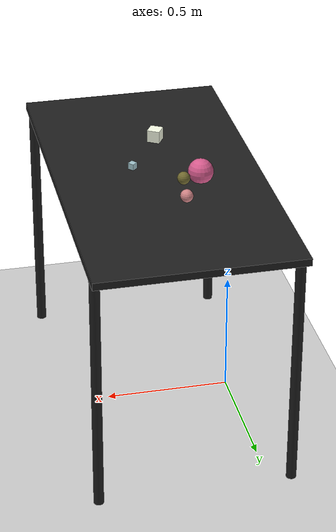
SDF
<?xml version="1.0" ?>
<sdf version="1.6">
  <world name="arm_world">
    <plugin filename="gz-sim-physics-system" name="gz::sim::systems::Physics">
      <engine>
        <filename>libgz-physics-bullet-featherstone-plugin.so</filename>
      </engine>
    </plugin>
    <plugin filename="gz-sim-user-commands-system" name="gz::sim::systems::UserCommands"/>
    <plugin filename="gz-sim-scene-broadcaster-system" name="gz::sim::systems::SceneBroadcaster"/>
    <plugin filename="gz-sim-sensors-system" name="gz::sim::systems::Sensors">
      <render_engine>ogre2</render_engine>
    </plugin>
    <gravity>0.0 0.0 -9.8</gravity>
    <scene>
      <shadows>false</shadows>
    </scene>
    <gui>
      <camera name="user_camera">
        <pose>0.75 -0.75 1.4 0 0.29 2.21</pose>
      </camera>
    </gui>
    <include>
      <uri>https://fuel.gazebosim.org/1.0/OpenRobotics/models/Sun</uri>
    </include>
    <model name="table">
      <static>true</static>
      <include>
        <uri>model://table</uri>
      </include>
      <pose>0.29 0 0 0 0 1.5708</pose>
    </model>
    <model name="ground_plane">
      <static>true</static>
      <link name="link">
        <collision name="collision">
          <geometry>
            <plane>
              <normal>0 0 1</normal>
            </plane>
          </geometry>
          <surface>
            <friction>
              <ode>
                <mu>1.0</mu>
                <mu2>1.0</mu2>
              </ode>
            </friction>
          </surface>
        </collision>
        <visual name="visual">
          <geometry>
            <plane>
              <normal>0 0 1</normal>
              <size>100 100</size>
            </plane>
          </geometry>
          <material>
            <ambient>0.8 0.8 0.8 1</ambient>
            <diffuse>0.8 0.8 0.8 1</diffuse>
            <specular>0.8 0.8 0.8 1</specular>
          </material>
        </visual>
      </link>
    </model>
    <model name="cube_s_0">
      <pose>0.384 -0.028 1.05 0 0 0.71</pose>
      <link name="cube_s_0_link">
        <collision name="cube_s_0_collision">
          <geometry>
            <box>
              <size>0.025 0.025 0.025</size>
            </box>
          </geometry>
        </collision>
        <visual name="cube_s_0_visual">
          <geometry>
            <box>
              <size>0.025 0.025 0.025</size>
            </box>
          </geometry>
          <material>
            <ambient>0.63 0.77 0.8 1</ambient>
            <diffuse>0.63 0.77 0.8 1</diffuse>
          </material>
        </visual>
        <velocity_decay>
          <linear>1</linear>
          <angular>1</angular>
        </velocity_decay>
      </link>
    </model>
    <model name="sphere_m_1">
      <pose>0.235 0.257 1.05 0 0 2.29</pose>
      <link name="sphere_m_1_link">
        <collision name="sphere_m_1_collision">
          <geometry>
            <sphere>
              <radius>0.025</radius>
            </sphere>
          </geometry>
        </collision>
        <visual name="sphere_m_1_visual">
          <geometry>
            <sphere>
              <radius>0.025</radius>
            </sphere>
          </geometry>
          <material>
            <ambient>0.82 0.52 0.53 1</ambient>
            <diffuse>0.82 0.52 0.53 1</diffuse>
          </material>
        </visual>
        <velocity_decay>
          <linear>1</linear>
          <angular>1</angular>
        </velocity_decay>
      </link>
    </model>
    <model name="cube_m_2">
      <pose>0.241 -0.274 1.05 0 0 4.18</pose>
      <link name="cube_m_2_link">
        <collision name="cube_m_2_collision">
          <geometry>
            <box>
              <size>0.05 0.05 0.05</size>
            </box>
          </geometry>
        </collision>
        <visual name="cube_m_2_visual">
          <geometry>
            <box>
              <size>0.05 0.05 0.05</size>
            </box>
          </geometry>
          <material>
            <ambient>0.98 1.0 0.91 1</ambient>
            <diffuse>0.98 1.0 0.91 1</diffuse>
          </material>
        </visual>
        <velocity_decay>
          <linear>1</linear>
          <angular>1</angular>
        </velocity_decay>
      </link>
    </model>
    <model name="sphere_l_3">
      <pose>0.137 0.074 1.05 0 0 1.95</pose>
      <link name="sphere_l_3_link">
        <collision name="sphere_l_3_collision">
          <geometry>
            <sphere>
              <radius>0.05</radius>
            </sphere>
          </geometry>
        </collision>
        <visual name="sphere_l_3_visual">
          <geometry>
            <sphere>
              <radius>0.05</radius>
            </sphere>
          </geometry>
          <material>
            <ambient>0.85 0.36 0.56 1</ambient>
            <diffuse>0.85 0.36 0.56 1</diffuse>
          </material>
        </visual>
        <velocity_decay>
          <linear>1</linear>
          <angular>1</angular>
        </velocity_decay>
      </link>
    </model>
    <model name="sphere_m_4">
      <pose>0.214 0.115 1.05 0 0 3.37</pose>
      <link name="sphere_m_4_link">
        <collision name="sphere_m_4_collision">
          <geometry>
            <sphere>
              <radius>0.025</radius>
            </sphere>
          </geometry>
        </collision>
        <visual name="sphere_m_4_visual">
          <geometry>
            <sphere>
              <radius>0.025</radius>
            </sphere>
          </geometry>
          <material>
            <ambient>0.45 0.42 0.19 1</ambient>
            <diffuse>0.45 0.42 0.19 1</diffuse>
          </material>
        </visual>
        <velocity_decay>
          <linear>1</linear>
          <angular>1</angular>
        </velocity_decay>
      </link>
    </model>
  </world>
</sdf>

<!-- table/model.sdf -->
<sdf version="1.5">
  <model name="table">
    <static>true</static>
    <link name="link">
      <collision name="surface">
        <pose>0 0 1.0 0 0 0</pose>
        <geometry>
          <box>
            <size>1.5 0.8 0.03</size>
          </box>
        </geometry>
        <surface>
          <friction>
            <ode>
              <mu>0.6</mu>
              <mu2>0.6</mu2>
            </ode>
          </friction>
        </surface>
      </collision>
      <visual name="surface">
        <pose>0 0 1.0 0 0 0</pose>
        <geometry>
          <box>
            <size>1.5 0.8 0.03</size>
          </box>
        </geometry>
        <material>
          <script>
            <uri>file://media/materials/scripts/gazebo.material</uri>
            <name>Gazebo/Black</name>
          </script>
        </material>
      </visual>
      <collision name="front_left_leg">
        <pose>0.68 0.38 0.5 0 0 0</pose>
        <geometry>
          <cylinder>
            <radius>0.02</radius>
            <length>1.0</length>
          </cylinder>
        </geometry>
      </collision>
      <visual name="front_left_leg">
        <pose>0.68 0.38 0.5 0 0 0</pose>
        <geometry>
          <cylinder>
            <radius>0.02</radius>
            <length>1.0</length>
          </cylinder>
        </geometry>
        <material>
          <script>
            <uri>file://media/materials/scripts/gazebo.material</uri>
            <name>Gazebo/Black</name>
          </script>
        </material>
      </visual>
      <collision name="front_right_leg">
        <pose>0.68 -0.38 0.5 0 0 0</pose>
        <geometry>
          <cylinder>
            <radius>0.02</radius>
            <length>1.0</length>
          </cylinder>
        </geometry>
      </collision>
      <visual name="front_right_leg">
        <pose>0.68 -0.38 0.5 0 0 0</pose>
        <geometry>
          <cylinder>
            <radius>0.02</radius>
            <length>1.0</length>
          </cylinder>
        </geometry>
        <material>
          <script>
            <uri>file://media/materials/scripts/gazebo.material</uri>
            <name>Gazebo/Black</name>
          </script>
        </material>
      </visual>
      <collision name="back_right_leg">
        <pose>-0.68 -0.38 0.5 0 0 0</pose>
        <geometry>
          <cylinder>
            <radius>0.02</radius>
            <length>1.0</length>
          </cylinder>
        </geometry>
      </collision>
      <visual name="back_right_leg">
        <pose>-0.68 -0.38 0.5 0 0 0</pose>
        <geometry>
          <cylinder>
            <radius>0.02</radius>
            <length>1.0</length>
          </cylinder>
        </geometry>
        <material>
          <script>
            <uri>file://media/materials/scripts/gazebo.material</uri>
            <name>Gazebo/Black</name>
          </script>
        </material>
      </visual>
      <collision name="back_left_leg">
        <pose>-0.68 0.38 0.5 0 0 0</pose>
        <geometry>
          <cylinder>
            <radius>0.02</radius>
            <length>1.0</length>
          </cylinder>
        </geometry>
      </collision>
      <visual name="back_left_leg">
        <pose>-0.68 0.38 0.5 0 0 0</pose>
        <geometry>
          <cylinder>
            <radius>0.02</radius>
            <length>1.0</length>
          </cylinder>
        </geometry>
        <material>
          <script>
            <uri>file://media/materials/scripts/gazebo.material</uri>
            <name>Gazebo/Black</name>
          </script>
        </material>
      </visual>
    </link>
  </model>
</sdf>
